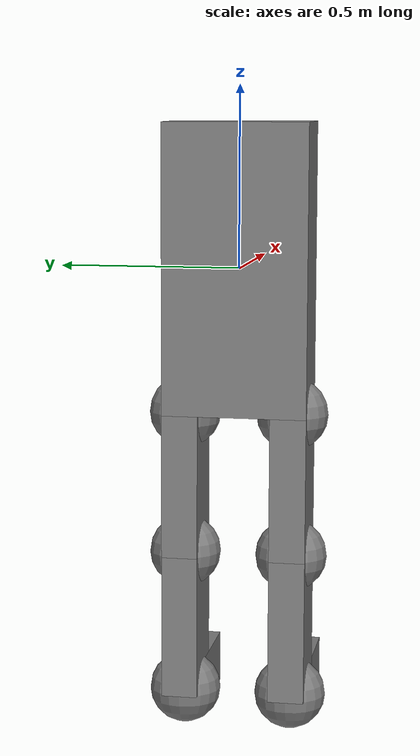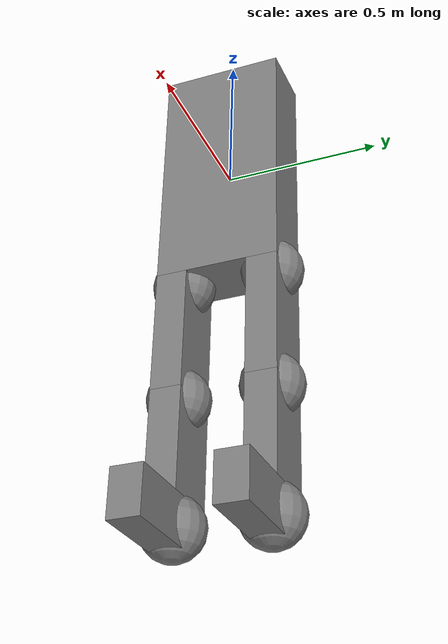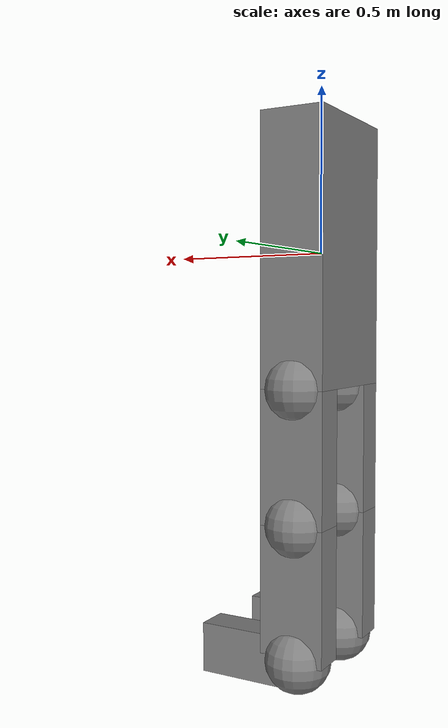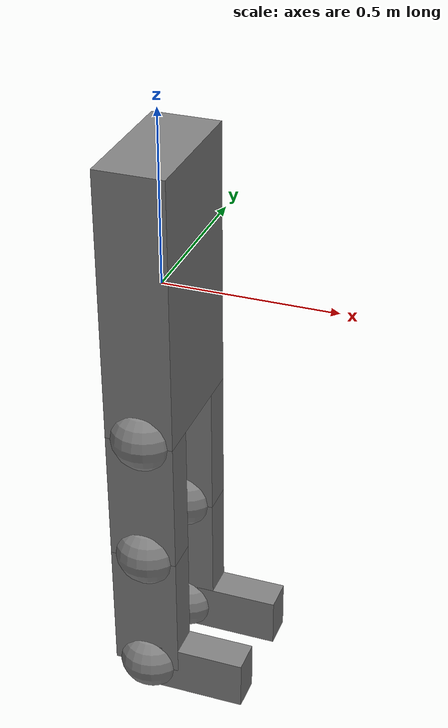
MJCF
<mujoco model = "legs">
    <compiler angle = "degree" inertiafromgeom="true" coordinate = "local"/>
<worldbody>
    <body name="base">
      <joint armature="0" axis="1 0 0" damping="0" limited="false" name="ignorex" pos="0 0 0" stiffness="0" type="slide"/>
      <joint armature="0" axis="0 0 1" damping="0" limited="false" name="ignorez" pos="0 0 0" stiffness="0" type="slide"/>
      <joint armature="0" axis="0 1 0" damping="0" limited="false" name="ignorey" pos="0 0 0" stiffness="0" type="hinge"/>
      <geom name="base" size="0.1 0.2 0.4" type="box" density="1000"/>
      <inertial mass="50"/>
<!-- Beginning of right leg -->
    <body name = "right_hip">
    <geom name = "right_hip_geom" size = "0.1" type = "sphere" density = "1000" pos = "0 -0.15 -0.4"/>

        <body name = "right_thigh">
        <joint axis = "0 1 0" name = "right_hip_to_right_thigh" pos = "0 0 -0.4" limited = "true" range = "-90 90" type = "hinge" />
        <geom name = "right_thigh_geom" pos = "0 -0.15 -0.6" size = "0.1 0.05 0.2" type = "box" density = "1000"/>
         <inertial mass="40"/>

            <body name = "right_knee">
            <geom name = "right_knee_geom" size = "0.1" type = "sphere" density = "1000" pos = "0 -0.15 -0.8"/>

                <body name = "right_shin">
                <joint axis = "0 1 0" name = "right_knee_to_right_shin" pos = "0 0 -0.8" limited = "true" range = "0 90" type = "hinge" />
                <geom name = "right_shin_geom" pos = "0 -0.15 -1" size = "0.1 0.05 0.2" type = "box" density = "1000"/>
                 <inertial mass="30"/>

                    <body name = "right_ankle">
                    <geom name = "right_ankle_geom" size = "0.1" type = "sphere" density = "1000" pos = "0 -0.15 -1.2"/>

                        <body name = "right_foot">
                        <joint axis = "0 1 0" name = "right_ankle_to_right_foot" pos = "0 0 -1.2" limited = "true" range = "-15 90" type = "hinge" />
                        <geom name = "right_foot_geom" pos = "0.15 -0.15 -1.2" size = "0.15 0.05 0.075" type = "box" density = "1000"/>
                         <inertial mass="10"/>
                        </body>
                    </body>
                </body>
            </body>
        </body>
    </body>

    <body name = "left_hip">
    <geom name = "left_hip_geom" size = "0.1" type = "sphere" density = "1000" pos = "0 0.15 -0.4"/>

        <body name = "left_thigh">
        <joint axis = "0 1 0" name = "left_hip_to_left_thigh" pos = "0 0 -0.4" limited = "true" range = "-90 90" type = "hinge" />
        <geom name = "left_thigh_geom" pos = "0 0.15 -0.6" size = "0.1 0.05 0.2" type = "box" density = "1000"/>
         <inertial mass="40"/>

            <body name = "left_knee">
            <geom name = "left_knee_geom" size = "0.1" type = "sphere" density = "1000" pos = "0 0.15 -0.8"/>

                <body name = "left_shin">
                <joint axis = "0 1 0" name = "left_thigh_to_left_shin" pos = "0 0 -0.8" limited = "true" range = "0 90" type = "hinge" />
                <geom name = "left_shin_geom" pos = "0 0.15 -1" size = "0.1 0.05 0.2" type = "box" density = "1000"/>
                 <inertial mass="30"/>
                    <body name = "left_ankle">
                    <geom name = "left_ankle_geom" size = "0.1" type = "sphere" density = "1000" pos = "0 0.15 -1.2"/>

                        <body name = "left_foot">
                        <joint axis = "0 1 0" name = "left_ankle_to_left_foot" pos = "0 0 -1.2" limited = "true" range = "-15 90" type = "hinge" />
                        <geom name = "left_foot_geom" pos = "0.15 0.15 -1.2" size = "0.15 0.05 0.075" type = "box" density = "1000"/>
                         <inertial mass="10"/>
                        </body>
                    </body>
                </body>
            </body>
        </body>
    </body>
</body>
</worldbody>
<actuator>
    <motor ctrllimited="false" joint="right_hip_to_right_thigh"/>
  </actuator>
</mujoco>
